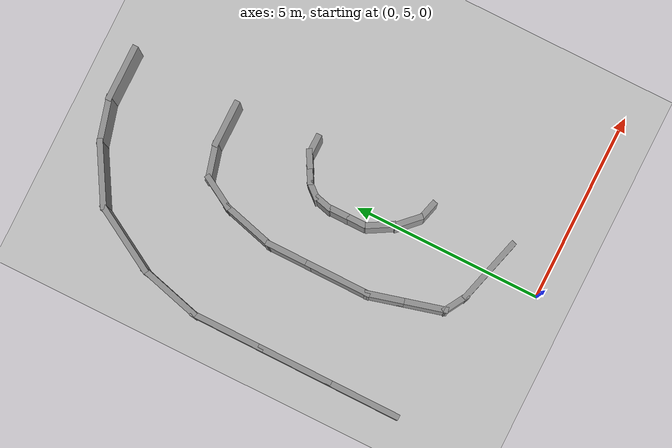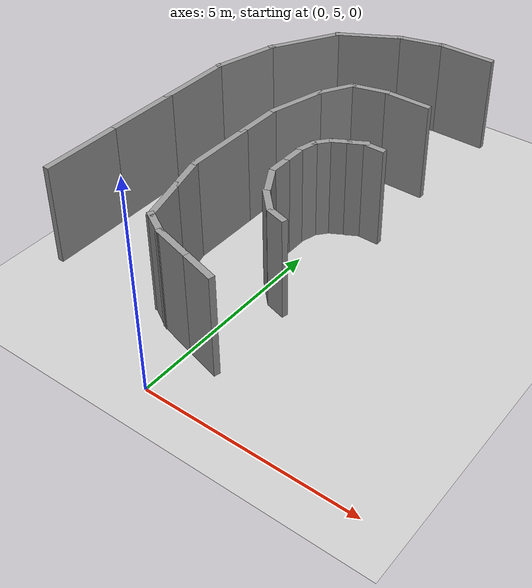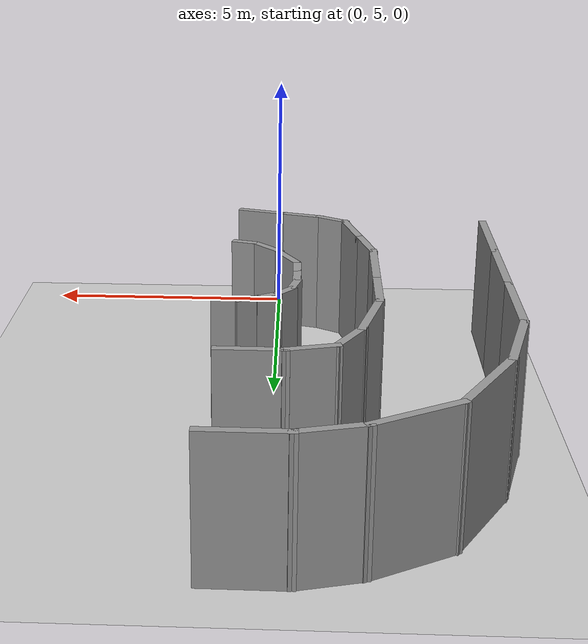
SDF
<sdf version="1.6">
 <world name="default">
  <model name="ground_plane">
   <static>1</static>
   <link name="link">
    <collision name="collision">
     <geometry><plane><normal>0 0 1</normal><size>100 100</size></plane></geometry>
     <surface><friction><ode><mu>100</mu><mu2>50</mu2></ode></friction></surface>
    </collision>
    <visual name="visual">
     <cast_shadows>0</cast_shadows>
     <geometry><plane><normal>0 0 1</normal><size>100 100</size></plane></geometry>
     <material>
      <script><uri>file://media/materials/scripts/gazebo.material</uri><name>Gazebo/Grey</name></script>
     </material>
    </visual>
   </link>
  </model>
  <model name="c-Snail_update">
   <link name="Wall_29">
    <pose>10.2991 1.24294 0 0 -0 1.5708</pose>
    <visual name="Wall_29_Visual">
     <pose>0 0 1.25 0 -0 0</pose>
     <geometry><box><size>1.5 0.15 2.5</size></box></geometry>
     <material>
      <script><uri>file://media/materials/scripts/gazebo.material</uri><name>Gazebo/Grey</name></script>
      <ambient>1 1 1 1</ambient>
     </material>
     <meta><layer>0</layer></meta>
    </visual>
    <collision name="Wall_29_Collision">
     <pose>0 0 1.25 0 -0 0</pose>
     <geometry><box><size>1.5 0.15 2.5</size></box></geometry>
     <surface>
      <friction>
       <ode><mu>1</mu><mu2>1</mu2><fdir1>0 0 0</fdir1><slip1>0</slip1><slip2>0</slip2></ode>
       <torsional>
        <coefficient>1</coefficient>
        <patch_radius>0</patch_radius>
        <surface_radius>0</surface_radius>
        <use_patch_radius>1</use_patch_radius>
        <ode><slip>0</slip></ode>
       </torsional>
      </friction>
      <bounce><restitution_coefficient>0</restitution_coefficient><threshold>1e+06</threshold></bounce>
      <contact>
       <collide_without_contact>0</collide_without_contact>
       <collide_without_contact_bitmask>1</collide_without_contact_bitmask>
       <collide_bitmask>1</collide_bitmask>
       <ode>
        <soft_cfm>0</soft_cfm>
        <soft_erp>0.2</soft_erp>
        <kp>1e+13</kp>
        <kd>1</kd>
        <max_vel>0.01</max_vel>
        <min_depth>0</min_depth>
       </ode>
       <bullet>
        <split_impulse>1</split_impulse>
        <split_impulse_penetration_threshold>-0.01</split_impulse_penetration_threshold>
        <soft_cfm>0</soft_cfm>
        <soft_erp>0.2</soft_erp>
        <kp>1e+13</kp>
        <kd>1</kd>
       </bullet>
      </contact>
     </surface>
    </collision>
   </link>
   <link name="Wall_30">
    <pose>10.1568 2.4492 0 0 -0 1.8326</pose>
    <visual name="Wall_30_Visual">
     <pose>0 0 1.25 0 -0 0</pose>
     <geometry><box><size>1.25 0.15 2.5</size></box></geometry>
     <material>
      <script><uri>file://media/materials/scripts/gazebo.material</uri><name>Gazebo/Grey</name></script>
      <ambient>1 1 1 1</ambient>
     </material>
     <meta><layer>0</layer></meta>
    </visual>
    <collision name="Wall_30_Collision">
     <pose>0 0 1.25 0 -0 0</pose>
     <geometry><box><size>1.25 0.15 2.5</size></box></geometry>
     <surface>
      <friction>
       <ode><mu>1</mu><mu2>1</mu2><fdir1>0 0 0</fdir1><slip1>0</slip1><slip2>0</slip2></ode>
       <torsional>
        <coefficient>1</coefficient>
        <patch_radius>0</patch_radius>
        <surface_radius>0</surface_radius>
        <use_patch_radius>1</use_patch_radius>
        <ode><slip>0</slip></ode>
       </torsional>
      </friction>
      <bounce><restitution_coefficient>0</restitution_coefficient><threshold>1e+06</threshold></bounce>
      <contact>
       <collide_without_contact>0</collide_without_contact>
       <collide_without_contact_bitmask>1</collide_without_contact_bitmask>
       <collide_bitmask>1</collide_bitmask>
       <ode>
        <soft_cfm>0</soft_cfm>
        <soft_erp>0.2</soft_erp>
        <kp>1e+13</kp>
        <kd>1</kd>
        <max_vel>0.01</max_vel>
        <min_depth>0</min_depth>
       </ode>
       <bullet>
        <split_impulse>1</split_impulse>
        <split_impulse_penetration_threshold>-0.01</split_impulse_penetration_threshold>
        <soft_cfm>0</soft_cfm>
        <soft_erp>0.2</soft_erp>
        <kp>1e+13</kp>
        <kd>1</kd>
       </bullet>
      </contact>
     </surface>
    </collision>
   </link>
   <link name="Wall_31">
    <pose>9.61441 3.67328 0 0 -0 2.0944</pose>
    <visual name="Wall_31_Visual">
     <pose>0 0 1.25 0 -0 0</pose>
     <geometry><box><size>1.75 0.15 2.5</size></box></geometry>
     <material>
      <script><uri>file://media/materials/scripts/gazebo.material</uri><name>Gazebo/Grey</name></script>
      <ambient>1 1 1 1</ambient>
     </material>
     <meta><layer>0</layer></meta>
    </visual>
    <collision name="Wall_31_Collision">
     <pose>0 0 1.25 0 -0 0</pose>
     <geometry><box><size>1.75 0.15 2.5</size></box></geometry>
     <surface>
      <friction>
       <ode><mu>1</mu><mu2>1</mu2><fdir1>0 0 0</fdir1><slip1>0</slip1><slip2>0</slip2></ode>
       <torsional>
        <coefficient>1</coefficient>
        <patch_radius>0</patch_radius>
        <surface_radius>0</surface_radius>
        <use_patch_radius>1</use_patch_radius>
        <ode><slip>0</slip></ode>
       </torsional>
      </friction>
      <bounce><restitution_coefficient>0</restitution_coefficient><threshold>1e+06</threshold></bounce>
      <contact>
       <collide_without_contact>0</collide_without_contact>
       <collide_without_contact_bitmask>1</collide_without_contact_bitmask>
       <collide_bitmask>1</collide_bitmask>
       <ode>
        <soft_cfm>0</soft_cfm>
        <soft_erp>0.2</soft_erp>
        <kp>1e+13</kp>
        <kd>1</kd>
        <max_vel>0.01</max_vel>
        <min_depth>0</min_depth>
       </ode>
       <bullet>
        <split_impulse>1</split_impulse>
        <split_impulse_penetration_threshold>-0.01</split_impulse_penetration_threshold>
        <soft_cfm>0</soft_cfm>
        <soft_erp>0.2</soft_erp>
        <kp>1e+13</kp>
        <kd>1</kd>
       </bullet>
      </contact>
     </surface>
    </collision>
   </link>
   <link name="Wall_32">
    <pose>8.41334 4.8286 0 0 -0 2.61799</pose>
    <visual name="Wall_32_Visual">
     <pose>0 0 1.25 0 -0 0</pose>
     <geometry><box><size>2 0.15 2.5</size></box></geometry>
     <material>
      <script><uri>file://media/materials/scripts/gazebo.material</uri><name>Gazebo/Grey</name></script>
      <ambient>1 1 1 1</ambient>
     </material>
     <meta><layer>0</layer></meta>
    </visual>
    <collision name="Wall_32_Collision">
     <pose>0 0 1.25 0 -0 0</pose>
     <geometry><box><size>2 0.15 2.5</size></box></geometry>
     <surface>
      <friction>
       <ode><mu>1</mu><mu2>1</mu2><fdir1>0 0 0</fdir1><slip1>0</slip1><slip2>0</slip2></ode>
       <torsional>
        <coefficient>1</coefficient>
        <patch_radius>0</patch_radius>
        <surface_radius>0</surface_radius>
        <use_patch_radius>1</use_patch_radius>
        <ode><slip>0</slip></ode>
       </torsional>
      </friction>
      <bounce><restitution_coefficient>0</restitution_coefficient><threshold>1e+06</threshold></bounce>
      <contact>
       <collide_without_contact>0</collide_without_contact>
       <collide_without_contact_bitmask>1</collide_without_contact_bitmask>
       <collide_bitmask>1</collide_bitmask>
       <ode>
        <soft_cfm>0</soft_cfm>
        <soft_erp>0.2</soft_erp>
        <kp>1e+13</kp>
        <kd>1</kd>
        <max_vel>0.01</max_vel>
        <min_depth>0</min_depth>
       </ode>
       <bullet>
        <split_impulse>1</split_impulse>
        <split_impulse_penetration_threshold>-0.01</split_impulse_penetration_threshold>
        <soft_cfm>0</soft_cfm>
        <soft_erp>0.2</soft_erp>
        <kp>1e+13</kp>
        <kd>1</kd>
       </bullet>
      </contact>
     </surface>
    </collision>
   </link>
   <link name="Wall_33">
    <pose>6.83952 5.49815 0 0 -0 2.87979</pose>
    <visual name="Wall_33_Visual">
     <pose>0 0 1.25 0 -0 0</pose>
     <geometry><box><size>1.75 0.15 2.5</size></box></geometry>
     <material>
      <script><uri>file://media/materials/scripts/gazebo.material</uri><name>Gazebo/Grey</name></script>
      <ambient>1 1 1 1</ambient>
     </material>
     <meta><layer>0</layer></meta>
    </visual>
    <collision name="Wall_33_Collision">
     <pose>0 0 1.25 0 -0 0</pose>
     <geometry><box><size>1.75 0.15 2.5</size></box></geometry>
     <surface>
      <friction>
       <ode><mu>1</mu><mu2>1</mu2><fdir1>0 0 0</fdir1><slip1>0</slip1><slip2>0</slip2></ode>
       <torsional>
        <coefficient>1</coefficient>
        <patch_radius>0</patch_radius>
        <surface_radius>0</surface_radius>
        <use_patch_radius>1</use_patch_radius>
        <ode><slip>0</slip></ode>
       </torsional>
      </friction>
      <bounce><restitution_coefficient>0</restitution_coefficient><threshold>1e+06</threshold></bounce>
      <contact>
       <collide_without_contact>0</collide_without_contact>
       <collide_without_contact_bitmask>1</collide_without_contact_bitmask>
       <collide_bitmask>1</collide_bitmask>
       <ode>
        <soft_cfm>0</soft_cfm>
        <soft_erp>0.2</soft_erp>
        <kp>1e+13</kp>
        <kd>1</kd>
        <max_vel>0.01</max_vel>
        <min_depth>0</min_depth>
       </ode>
       <bullet>
        <split_impulse>1</split_impulse>
        <split_impulse_penetration_threshold>-0.01</split_impulse_penetration_threshold>
        <soft_cfm>0</soft_cfm>
        <soft_erp>0.2</soft_erp>
        <kp>1e+13</kp>
        <kd>1</kd>
       </bullet>
      </contact>
     </surface>
    </collision>
   </link>
   <link name="Wall_34">
    <pose>5.14178 5.70521 0 0 -0 3.14159</pose>
    <visual name="Wall_34_Visual">
     <pose>0 0 1.25 0 -0 0</pose>
     <geometry><box><size>2 0.15 2.5</size></box></geometry>
     <material>
      <script><uri>file://media/materials/scripts/gazebo.material</uri><name>Gazebo/Grey</name></script>
      <ambient>1 1 1 1</ambient>
     </material>
     <meta><layer>0</layer></meta>
    </visual>
    <collision name="Wall_34_Collision">
     <pose>0 0 1.25 0 -0 0</pose>
     <geometry><box><size>2 0.15 2.5</size></box></geometry>
     <surface>
      <friction>
       <ode><mu>1</mu><mu2>1</mu2><fdir1>0 0 0</fdir1><slip1>0</slip1><slip2>0</slip2></ode>
       <torsional>
        <coefficient>1</coefficient>
        <patch_radius>0</patch_radius>
        <surface_radius>0</surface_radius>
        <use_patch_radius>1</use_patch_radius>
        <ode><slip>0</slip></ode>
       </torsional>
      </friction>
      <bounce><restitution_coefficient>0</restitution_coefficient><threshold>1e+06</threshold></bounce>
      <contact>
       <collide_without_contact>0</collide_without_contact>
       <collide_without_contact_bitmask>1</collide_without_contact_bitmask>
       <collide_bitmask>1</collide_bitmask>
       <ode>
        <soft_cfm>0</soft_cfm>
        <soft_erp>0.2</soft_erp>
        <kp>1e+13</kp>
        <kd>1</kd>
        <max_vel>0.01</max_vel>
        <min_depth>0</min_depth>
       </ode>
       <bullet>
        <split_impulse>1</split_impulse>
        <split_impulse_penetration_threshold>-0.01</split_impulse_penetration_threshold>
        <soft_cfm>0</soft_cfm>
        <soft_erp>0.2</soft_erp>
        <kp>1e+13</kp>
        <kd>1</kd>
       </bullet>
      </contact>
     </surface>
    </collision>
   </link>
   <link name="Wall_35">
    <pose>3.29178 5.70521 0 0 -0 3.14159</pose>
    <visual name="Wall_35_Visual">
     <pose>0 0 1.25 0 -0 0</pose>
     <geometry><box><size>2 0.15 2.5</size></box></geometry>
     <material>
      <script><uri>file://media/materials/scripts/gazebo.material</uri><name>Gazebo/Grey</name></script>
      <ambient>1 1 1 1</ambient>
     </material>
     <meta><layer>0</layer></meta>
    </visual>
    <collision name="Wall_35_Collision">
     <pose>0 0 1.25 0 -0 0</pose>
     <geometry><box><size>2 0.15 2.5</size></box></geometry>
     <surface>
      <friction>
       <ode><mu>1</mu><mu2>1</mu2><fdir1>0 0 0</fdir1><slip1>0</slip1><slip2>0</slip2></ode>
       <torsional>
        <coefficient>1</coefficient>
        <patch_radius>0</patch_radius>
        <surface_radius>0</surface_radius>
        <use_patch_radius>1</use_patch_radius>
        <ode><slip>0</slip></ode>
       </torsional>
      </friction>
      <bounce><restitution_coefficient>0</restitution_coefficient><threshold>1e+06</threshold></bounce>
      <contact>
       <collide_without_contact>0</collide_without_contact>
       <collide_without_contact_bitmask>1</collide_without_contact_bitmask>
       <collide_bitmask>1</collide_bitmask>
       <ode>
        <soft_cfm>0</soft_cfm>
        <soft_erp>0.2</soft_erp>
        <kp>1e+13</kp>
        <kd>1</kd>
        <max_vel>0.01</max_vel>
        <min_depth>0</min_depth>
       </ode>
       <bullet>
        <split_impulse>1</split_impulse>
        <split_impulse_penetration_threshold>-0.01</split_impulse_penetration_threshold>
        <soft_cfm>0</soft_cfm>
        <soft_erp>0.2</soft_erp>
        <kp>1e+13</kp>
        <kd>1</kd>
       </bullet>
      </contact>
     </surface>
    </collision>
   </link>
   <link name="Wall_36">
    <pose>1.44178 5.70521 0 0 -0 3.14159</pose>
    <visual name="Wall_36_Visual">
     <pose>0 0 1.25 0 -0 0</pose>
     <geometry><box><size>2 0.15 2.5</size></box></geometry>
     <material>
      <script><uri>file://media/materials/scripts/gazebo.material</uri><name>Gazebo/Grey</name></script>
      <ambient>1 1 1 1</ambient>
     </material>
     <meta><layer>0</layer></meta>
    </visual>
    <collision name="Wall_36_Collision">
     <pose>0 0 1.25 0 -0 0</pose>
     <geometry><box><size>2 0.15 2.5</size></box></geometry>
     <surface>
      <friction>
       <ode><mu>1</mu><mu2>1</mu2><fdir1>0 0 0</fdir1><slip1>0</slip1><slip2>0</slip2></ode>
       <torsional>
        <coefficient>1</coefficient>
        <patch_radius>0</patch_radius>
        <surface_radius>0</surface_radius>
        <use_patch_radius>1</use_patch_radius>
        <ode><slip>0</slip></ode>
       </torsional>
      </friction>
      <bounce><restitution_coefficient>0</restitution_coefficient><threshold>1e+06</threshold></bounce>
      <contact>
       <collide_without_contact>0</collide_without_contact>
       <collide_without_contact_bitmask>1</collide_without_contact_bitmask>
       <collide_bitmask>1</collide_bitmask>
       <ode>
        <soft_cfm>0</soft_cfm>
        <soft_erp>0.2</soft_erp>
        <kp>1e+13</kp>
        <kd>1</kd>
        <max_vel>0.01</max_vel>
        <min_depth>0</min_depth>
       </ode>
       <bullet>
        <split_impulse>1</split_impulse>
        <split_impulse_penetration_threshold>-0.01</split_impulse_penetration_threshold>
        <soft_cfm>0</soft_cfm>
        <soft_erp>0.2</soft_erp>
        <kp>1e+13</kp>
        <kd>1</kd>
       </bullet>
      </contact>
     </surface>
    </collision>
   </link>
   <link name="Wall_56">
    <pose>7.46018 1.20021 0 0 -0 1.5708</pose>
    <visual name="Wall_56_Visual">
     <pose>0 0 1.25 0 -0 0</pose>
     <geometry><box><size>1.25 0.15 2.5</size></box></geometry>
     <material>
      <script><uri>file://media/materials/scripts/gazebo.material</uri><name>Gazebo/Grey</name></script>
      <ambient>1 1 1 1</ambient>
     </material>
     <meta><layer>0</layer></meta>
    </visual>
    <collision name="Wall_56_Collision">
     <pose>0 0 1.25 0 -0 0</pose>
     <geometry><box><size>1.25 0.15 2.5</size></box></geometry>
     <surface>
      <friction>
       <ode><mu>1</mu><mu2>1</mu2><fdir1>0 0 0</fdir1><slip1>0</slip1><slip2>0</slip2></ode>
       <torsional>
        <coefficient>1</coefficient>
        <patch_radius>0</patch_radius>
        <surface_radius>0</surface_radius>
        <use_patch_radius>1</use_patch_radius>
        <ode><slip>0</slip></ode>
       </torsional>
      </friction>
      <bounce><restitution_coefficient>0</restitution_coefficient><threshold>1e+06</threshold></bounce>
      <contact>
       <collide_without_contact>0</collide_without_contact>
       <collide_without_contact_bitmask>1</collide_without_contact_bitmask>
       <collide_bitmask>1</collide_bitmask>
       <ode>
        <soft_cfm>0</soft_cfm>
        <soft_erp>0.2</soft_erp>
        <kp>1e+13</kp>
        <kd>1</kd>
        <max_vel>0.01</max_vel>
        <min_depth>0</min_depth>
       </ode>
       <bullet>
        <split_impulse>1</split_impulse>
        <split_impulse_penetration_threshold>-0.01</split_impulse_penetration_threshold>
        <soft_cfm>0</soft_cfm>
        <soft_erp>0.2</soft_erp>
        <kp>1e+13</kp>
        <kd>1</kd>
       </bullet>
      </contact>
     </surface>
    </collision>
   </link>
   <link name="Wall_57">
    <pose>7.35018 2.16072 0 0 -0 1.8326</pose>
    <visual name="Wall_57_Visual">
     <pose>0 0 1.25 0 -0 0</pose>
     <geometry><box><size>1 0.15 2.5</size></box></geometry>
     <material>
      <script><uri>file://media/materials/scripts/gazebo.material</uri><name>Gazebo/Grey</name></script>
      <ambient>1 1 1 1</ambient>
     </material>
     <meta><layer>0</layer></meta>
    </visual>
    <collision name="Wall_57_Collision">
     <pose>0 0 1.25 0 -0 0</pose>
     <geometry><box><size>1 0.15 2.5</size></box></geometry>
     <surface>
      <friction>
       <ode><mu>1</mu><mu2>1</mu2><fdir1>0 0 0</fdir1><slip1>0</slip1><slip2>0</slip2></ode>
       <torsional>
        <coefficient>1</coefficient>
        <patch_radius>0</patch_radius>
        <surface_radius>0</surface_radius>
        <use_patch_radius>1</use_patch_radius>
        <ode><slip>0</slip></ode>
       </torsional>
      </friction>
      <bounce><restitution_coefficient>0</restitution_coefficient><threshold>1e+06</threshold></bounce>
      <contact>
       <collide_without_contact>0</collide_without_contact>
       <collide_without_contact_bitmask>1</collide_without_contact_bitmask>
       <collide_bitmask>1</collide_bitmask>
       <ode>
        <soft_cfm>0</soft_cfm>
        <soft_erp>0.2</soft_erp>
        <kp>1e+13</kp>
        <kd>1</kd>
        <max_vel>0.01</max_vel>
        <min_depth>0</min_depth>
       </ode>
       <bullet>
        <split_impulse>1</split_impulse>
        <split_impulse_penetration_threshold>-0.01</split_impulse_penetration_threshold>
        <soft_cfm>0</soft_cfm>
        <soft_erp>0.2</soft_erp>
        <kp>1e+13</kp>
        <kd>1</kd>
       </bullet>
      </contact>
     </surface>
    </collision>
   </link>
   <link name="Wall_58">
    <pose>6.87212 2.78374 0 0 -0 2.61799</pose>
    <visual name="Wall_58_Visual">
     <pose>0 0 1.25 0 -0 0</pose>
     <geometry><box><size>1 0.15 2.5</size></box></geometry>
     <material>
      <script><uri>file://media/materials/scripts/gazebo.material</uri><name>Gazebo/Grey</name></script>
      <ambient>1 1 1 1</ambient>
     </material>
     <meta><layer>0</layer></meta>
    </visual>
    <collision name="Wall_58_Collision">
     <pose>0 0 1.25 0 -0 0</pose>
     <geometry><box><size>1 0.15 2.5</size></box></geometry>
     <surface>
      <friction>
       <ode><mu>1</mu><mu2>1</mu2><fdir1>0 0 0</fdir1><slip1>0</slip1><slip2>0</slip2></ode>
       <torsional>
        <coefficient>1</coefficient>
        <patch_radius>0</patch_radius>
        <surface_radius>0</surface_radius>
        <use_patch_radius>1</use_patch_radius>
        <ode><slip>0</slip></ode>
       </torsional>
      </friction>
      <bounce><restitution_coefficient>0</restitution_coefficient><threshold>1e+06</threshold></bounce>
      <contact>
       <collide_without_contact>0</collide_without_contact>
       <collide_without_contact_bitmask>1</collide_without_contact_bitmask>
       <collide_bitmask>1</collide_bitmask>
       <ode>
        <soft_cfm>0</soft_cfm>
        <soft_erp>0.2</soft_erp>
        <kp>1e+13</kp>
        <kd>1</kd>
        <max_vel>0.01</max_vel>
        <min_depth>0</min_depth>
       </ode>
       <bullet>
        <split_impulse>1</split_impulse>
        <split_impulse_penetration_threshold>-0.01</split_impulse_penetration_threshold>
        <soft_cfm>0</soft_cfm>
        <soft_erp>0.2</soft_erp>
        <kp>1e+13</kp>
        <kd>1</kd>
       </bullet>
      </contact>
     </surface>
    </collision>
   </link>
   <link name="Wall_59">
    <pose>5.85206 3.17095 0 0 -0 2.87979</pose>
    <visual name="Wall_59_Visual">
     <pose>0 0 1.25 0 -0 0</pose>
     <geometry><box><size>1.5 0.15 2.5</size></box></geometry>
     <material>
      <script><uri>file://media/materials/scripts/gazebo.material</uri><name>Gazebo/Grey</name></script>
      <ambient>1 1 1 1</ambient>
     </material>
     <meta><layer>0</layer></meta>
    </visual>
    <collision name="Wall_59_Collision">
     <pose>0 0 1.25 0 -0 0</pose>
     <geometry><box><size>1.5 0.15 2.5</size></box></geometry>
     <surface>
      <friction>
       <ode><mu>1</mu><mu2>1</mu2><fdir1>0 0 0</fdir1><slip1>0</slip1><slip2>0</slip2></ode>
       <torsional>
        <coefficient>1</coefficient>
        <patch_radius>0</patch_radius>
        <surface_radius>0</surface_radius>
        <use_patch_radius>1</use_patch_radius>
        <ode><slip>0</slip></ode>
       </torsional>
      </friction>
      <bounce><restitution_coefficient>0</restitution_coefficient><threshold>1e+06</threshold></bounce>
      <contact>
       <collide_without_contact>0</collide_without_contact>
       <collide_without_contact_bitmask>1</collide_without_contact_bitmask>
       <collide_bitmask>1</collide_bitmask>
       <ode>
        <soft_cfm>0</soft_cfm>
        <soft_erp>0.2</soft_erp>
        <kp>1e+13</kp>
        <kd>1</kd>
        <max_vel>0.01</max_vel>
        <min_depth>0</min_depth>
       </ode>
       <bullet>
        <split_impulse>1</split_impulse>
        <split_impulse_penetration_threshold>-0.01</split_impulse_penetration_threshold>
        <soft_cfm>0</soft_cfm>
        <soft_erp>0.2</soft_erp>
        <kp>1e+13</kp>
        <kd>1</kd>
       </bullet>
      </contact>
     </surface>
    </collision>
   </link>
   <link name="Wall_60">
    <pose>4.65006 3.34565 0 0 -0 3.14159</pose>
    <visual name="Wall_60_Visual">
     <pose>0 0 1.25 0 -0 0</pose>
     <geometry><box><size>1.25 0.15 2.5</size></box></geometry>
     <material>
      <script><uri>file://media/materials/scripts/gazebo.material</uri><name>Gazebo/Grey</name></script>
      <ambient>1 1 1 1</ambient>
     </material>
     <meta><layer>0</layer></meta>
    </visual>
    <collision name="Wall_60_Collision">
     <pose>0 0 1.25 0 -0 0</pose>
     <geometry><box><size>1.25 0.15 2.5</size></box></geometry>
     <surface>
      <friction>
       <ode><mu>1</mu><mu2>1</mu2><fdir1>0 0 0</fdir1><slip1>0</slip1><slip2>0</slip2></ode>
       <torsional>
        <coefficient>1</coefficient>
        <patch_radius>0</patch_radius>
        <surface_radius>0</surface_radius>
        <use_patch_radius>1</use_patch_radius>
        <ode><slip>0</slip></ode>
       </torsional>
      </friction>
      <bounce><restitution_coefficient>0</restitution_coefficient><threshold>1e+06</threshold></bounce>
      <contact>
       <collide_without_contact>0</collide_without_contact>
       <collide_without_contact_bitmask>1</collide_without_contact_bitmask>
       <collide_bitmask>1</collide_bitmask>
       <ode>
        <soft_cfm>0</soft_cfm>
        <soft_erp>0.2</soft_erp>
        <kp>1e+13</kp>
        <kd>1</kd>
        <max_vel>0.01</max_vel>
        <min_depth>0</min_depth>
       </ode>
       <bullet>
        <split_impulse>1</split_impulse>
        <split_impulse_penetration_threshold>-0.01</split_impulse_penetration_threshold>
        <soft_cfm>0</soft_cfm>
        <soft_erp>0.2</soft_erp>
        <kp>1e+13</kp>
        <kd>1</kd>
       </bullet>
      </contact>
     </surface>
    </collision>
   </link>
   <link name="Wall_61">
    <pose>3.30006 3.34565 0 0 -0 3.14159</pose>
    <visual name="Wall_61_Visual">
     <pose>0 0 1.25 0 -0 0</pose>
     <geometry><box><size>1.75 0.15 2.5</size></box></geometry>
     <material>
      <script><uri>file://media/materials/scripts/gazebo.material</uri><name>Gazebo/Grey</name></script>
      <ambient>1 1 1 1</ambient>
     </material>
     <meta><layer>0</layer></meta>
    </visual>
    <collision name="Wall_61_Collision">
     <pose>0 0 1.25 0 -0 0</pose>
     <geometry><box><size>1.75 0.15 2.5</size></box></geometry>
     <surface>
      <friction>
       <ode><mu>1</mu><mu2>1</mu2><fdir1>0 0 0</fdir1><slip1>0</slip1><slip2>0</slip2></ode>
       <torsional>
        <coefficient>1</coefficient>
        <patch_radius>0</patch_radius>
        <surface_radius>0</surface_radius>
        <use_patch_radius>1</use_patch_radius>
        <ode><slip>0</slip></ode>
       </torsional>
      </friction>
      <bounce><restitution_coefficient>0</restitution_coefficient><threshold>1e+06</threshold></bounce>
      <contact>
       <collide_without_contact>0</collide_without_contact>
       <collide_without_contact_bitmask>1</collide_without_contact_bitmask>
       <collide_bitmask>1</collide_bitmask>
       <ode>
        <soft_cfm>0</soft_cfm>
        <soft_erp>0.2</soft_erp>
        <kp>1e+13</kp>
        <kd>1</kd>
        <max_vel>0.01</max_vel>
        <min_depth>0</min_depth>
       </ode>
       <bullet>
        <split_impulse>1</split_impulse>
        <split_impulse_penetration_threshold>-0.01</split_impulse_penetration_threshold>
        <soft_cfm>0</soft_cfm>
        <soft_erp>0.2</soft_erp>
        <kp>1e+13</kp>
        <kd>1</kd>
       </bullet>
      </contact>
     </surface>
    </collision>
   </link>
   <link name="Wall_62">
    <pose>2.08954 3.23565 0 0 0 -2.87979</pose>
    <visual name="Wall_62_Visual">
     <pose>0 0 1.25 0 -0 0</pose>
     <geometry><box><size>1 0.15 2.5</size></box></geometry>
     <material>
      <script><uri>file://media/materials/scripts/gazebo.material</uri><name>Gazebo/Grey</name></script>
      <ambient>1 1 1 1</ambient>
     </material>
     <meta><layer>0</layer></meta>
    </visual>
    <collision name="Wall_62_Collision">
     <pose>0 0 1.25 0 -0 0</pose>
     <geometry><box><size>1 0.15 2.5</size></box></geometry>
     <surface>
      <friction>
       <ode><mu>1</mu><mu2>1</mu2><fdir1>0 0 0</fdir1><slip1>0</slip1><slip2>0</slip2></ode>
       <torsional>
        <coefficient>1</coefficient>
        <patch_radius>0</patch_radius>
        <surface_radius>0</surface_radius>
        <use_patch_radius>1</use_patch_radius>
        <ode><slip>0</slip></ode>
       </torsional>
      </friction>
      <bounce><restitution_coefficient>0</restitution_coefficient><threshold>1e+06</threshold></bounce>
      <contact>
       <collide_without_contact>0</collide_without_contact>
       <collide_without_contact_bitmask>1</collide_without_contact_bitmask>
       <collide_bitmask>1</collide_bitmask>
       <ode>
        <soft_cfm>0</soft_cfm>
        <soft_erp>0.2</soft_erp>
        <kp>1e+13</kp>
        <kd>1</kd>
        <max_vel>0.01</max_vel>
        <min_depth>0</min_depth>
       </ode>
       <bullet>
        <split_impulse>1</split_impulse>
        <split_impulse_penetration_threshold>-0.01</split_impulse_penetration_threshold>
        <soft_cfm>0</soft_cfm>
        <soft_erp>0.2</soft_erp>
        <kp>1e+13</kp>
        <kd>1</kd>
       </bullet>
      </contact>
     </surface>
    </collision>
   </link>
   <link name="Wall_63">
    <pose>1.14777 2.9833 0 0 0 -2.87979</pose>
    <visual name="Wall_63_Visual">
     <pose>0 0 1.25 0 -0 0</pose>
     <geometry><box><size>1.25 0.15 2.5</size></box></geometry>
     <material>
      <script><uri>file://media/materials/scripts/gazebo.material</uri><name>Gazebo/Grey</name></script>
      <ambient>1 1 1 1</ambient>
     </material>
     <meta><layer>0</layer></meta>
    </visual>
    <collision name="Wall_63_Collision">
     <pose>0 0 1.25 0 -0 0</pose>
     <geometry><box><size>1.25 0.15 2.5</size></box></geometry>
     <surface>
      <friction>
       <ode><mu>1</mu><mu2>1</mu2><fdir1>0 0 0</fdir1><slip1>0</slip1><slip2>0</slip2></ode>
       <torsional>
        <coefficient>1</coefficient>
        <patch_radius>0</patch_radius>
        <surface_radius>0</surface_radius>
        <use_patch_radius>1</use_patch_radius>
        <ode><slip>0</slip></ode>
       </torsional>
      </friction>
      <bounce><restitution_coefficient>0</restitution_coefficient><threshold>1e+06</threshold></bounce>
      <contact>
       <collide_without_contact>0</collide_without_contact>
       <collide_without_contact_bitmask>1</collide_without_contact_bitmask>
       <collide_bitmask>1</collide_bitmask>
       <ode>
        <soft_cfm>0</soft_cfm>
        <soft_erp>0.2</soft_erp>
        <kp>1e+13</kp>
        <kd>1</kd>
        <max_vel>0.01</max_vel>
        <min_depth>0</min_depth>
       </ode>
       <bullet>
        <split_impulse>1</split_impulse>
        <split_impulse_penetration_threshold>-0.01</split_impulse_penetration_threshold>
        <soft_cfm>0</soft_cfm>
        <soft_erp>0.2</soft_erp>
        <kp>1e+13</kp>
        <kd>1</kd>
       </bullet>
      </contact>
     </surface>
    </collision>
   </link>
   <link name="Wall_64">
    <pose>0.466507 2.58114 0 0 0 -2.0944</pose>
    <visual name="Wall_64_Visual">
     <pose>0 0 1.25 0 -0 0</pose>
     <geometry><box><size>0.75 0.15 2.5</size></box></geometry>
     <material>
      <script><uri>file://media/materials/scripts/gazebo.material</uri><name>Gazebo/Grey</name></script>
      <ambient>1 1 1 1</ambient>
     </material>
     <meta><layer>0</layer></meta>
    </visual>
    <collision name="Wall_64_Collision">
     <pose>0 0 1.25 0 -0 0</pose>
     <geometry><box><size>0.75 0.15 2.5</size></box></geometry>
     <surface>
      <friction>
       <ode><mu>1</mu><mu2>1</mu2><fdir1>0 0 0</fdir1><slip1>0</slip1><slip2>0</slip2></ode>
       <torsional>
        <coefficient>1</coefficient>
        <patch_radius>0</patch_radius>
        <surface_radius>0</surface_radius>
        <use_patch_radius>1</use_patch_radius>
        <ode><slip>0</slip></ode>
       </torsional>
      </friction>
      <bounce><restitution_coefficient>0</restitution_coefficient><threshold>1e+06</threshold></bounce>
      <contact>
       <collide_without_contact>0</collide_without_contact>
       <collide_without_contact_bitmask>1</collide_without_contact_bitmask>
       <collide_bitmask>1</collide_bitmask>
       <ode>
        <soft_cfm>0</soft_cfm>
        <soft_erp>0.2</soft_erp>
        <kp>1e+13</kp>
        <kd>1</kd>
        <max_vel>0.01</max_vel>
        <min_depth>0</min_depth>
       </ode>
       <bullet>
        <split_impulse>1</split_impulse>
        <split_impulse_penetration_threshold>-0.01</split_impulse_penetration_threshold>
        <soft_cfm>0</soft_cfm>
        <soft_erp>0.2</soft_erp>
        <kp>1e+13</kp>
        <kd>1</kd>
       </bullet>
      </contact>
     </surface>
    </collision>
   </link>
   <link name="Wall_65">
    <pose>0.206509 1.91082 0 0 0 -1.8326</pose>
    <visual name="Wall_65_Visual">
     <pose>0 0 1.25 0 -0 0</pose>
     <geometry><box><size>1 0.15 2.5</size></box></geometry>
     <material>
      <script><uri>file://media/materials/scripts/gazebo.material</uri><name>Gazebo/Grey</name></script>
      <ambient>1 1 1 1</ambient>
     </material>
     <meta><layer>0</layer></meta>
    </visual>
    <collision name="Wall_65_Collision">
     <pose>0 0 1.25 0 -0 0</pose>
     <geometry><box><size>1 0.15 2.5</size></box></geometry>
     <surface>
      <friction>
       <ode><mu>1</mu><mu2>1</mu2><fdir1>0 0 0</fdir1><slip1>0</slip1><slip2>0</slip2></ode>
       <torsional>
        <coefficient>1</coefficient>
        <patch_radius>0</patch_radius>
        <surface_radius>0</surface_radius>
        <use_patch_radius>1</use_patch_radius>
        <ode><slip>0</slip></ode>
       </torsional>
      </friction>
      <bounce><restitution_coefficient>0</restitution_coefficient><threshold>1e+06</threshold></bounce>
      <contact>
       <collide_without_contact>0</collide_without_contact>
       <collide_without_contact_bitmask>1</collide_without_contact_bitmask>
       <collide_bitmask>1</collide_bitmask>
       <ode>
        <soft_cfm>0</soft_cfm>
        <soft_erp>0.2</soft_erp>
        <kp>1e+13</kp>
        <kd>1</kd>
        <max_vel>0.01</max_vel>
        <min_depth>0</min_depth>
       </ode>
       <bullet>
        <split_impulse>1</split_impulse>
        <split_impulse_penetration_threshold>-0.01</split_impulse_penetration_threshold>
        <soft_cfm>0</soft_cfm>
        <soft_erp>0.2</soft_erp>
        <kp>1e+13</kp>
        <kd>1</kd>
       </bullet>
      </contact>
     </surface>
    </collision>
   </link>
   <link name="Wall_66">
    <pose>-0.013487 1.08978 0 0 0 -1.8326</pose>
    <visual name="Wall_66_Visual">
     <pose>0 0 1.25 0 -0 0</pose>
     <geometry><box><size>1 0.15 2.5</size></box></geometry>
     <material>
      <script><uri>file://media/materials/scripts/gazebo.material</uri><name>Gazebo/Grey</name></script>
      <ambient>1 1 1 1</ambient>
     </material>
     <meta><layer>0</layer></meta>
    </visual>
    <collision name="Wall_66_Collision">
     <pose>0 0 1.25 0 -0 0</pose>
     <geometry><box><size>1 0.15 2.5</size></box></geometry>
     <surface>
      <friction>
       <ode><mu>1</mu><mu2>1</mu2><fdir1>0 0 0</fdir1><slip1>0</slip1><slip2>0</slip2></ode>
       <torsional>
        <coefficient>1</coefficient>
        <patch_radius>0</patch_radius>
        <surface_radius>0</surface_radius>
        <use_patch_radius>1</use_patch_radius>
        <ode><slip>0</slip></ode>
       </torsional>
      </friction>
      <bounce><restitution_coefficient>0</restitution_coefficient><threshold>1e+06</threshold></bounce>
      <contact>
       <collide_without_contact>0</collide_without_contact>
       <collide_without_contact_bitmask>1</collide_without_contact_bitmask>
       <collide_bitmask>1</collide_bitmask>
       <ode>
        <soft_cfm>0</soft_cfm>
        <soft_erp>0.2</soft_erp>
        <kp>1e+13</kp>
        <kd>1</kd>
        <max_vel>0.01</max_vel>
        <min_depth>0</min_depth>
       </ode>
       <bullet>
        <split_impulse>1</split_impulse>
        <split_impulse_penetration_threshold>-0.01</split_impulse_penetration_threshold>
        <soft_cfm>0</soft_cfm>
        <soft_erp>0.2</soft_erp>
        <kp>1e+13</kp>
        <kd>1</kd>
       </bullet>
      </contact>
     </surface>
    </collision>
   </link>
   <link name="Wall_78">
    <pose>5.30515 0.648382 0 0 -0 1.5708</pose>
    <visual name="Wall_78_Visual">
     <pose>0 0 1.25 0 -0 0</pose>
     <geometry><box><size>0.5 0.15 2.5</size></box></geometry>
     <material>
      <script><uri>file://media/materials/scripts/gazebo.material</uri><name>Gazebo/Grey</name></script>
      <ambient>1 1 1 1</ambient>
     </material>
     <meta><layer>0</layer></meta>
    </visual>
    <collision name="Wall_78_Collision">
     <pose>0 0 1.25 0 -0 0</pose>
     <geometry><box><size>0.5 0.15 2.5</size></box></geometry>
     <surface>
      <friction>
       <ode><mu>1</mu><mu2>1</mu2><fdir1>0 0 0</fdir1><slip1>0</slip1><slip2>0</slip2></ode>
       <torsional>
        <coefficient>1</coefficient>
        <patch_radius>0</patch_radius>
        <surface_radius>0</surface_radius>
        <use_patch_radius>1</use_patch_radius>
        <ode><slip>0</slip></ode>
       </torsional>
      </friction>
      <bounce><restitution_coefficient>0</restitution_coefficient><threshold>1e+06</threshold></bounce>
      <contact>
       <collide_without_contact>0</collide_without_contact>
       <collide_without_contact_bitmask>1</collide_without_contact_bitmask>
       <collide_bitmask>1</collide_bitmask>
       <ode>
        <soft_cfm>0</soft_cfm>
        <soft_erp>0.2</soft_erp>
        <kp>1e+13</kp>
        <kd>1</kd>
        <max_vel>0.01</max_vel>
        <min_depth>0</min_depth>
       </ode>
       <bullet>
        <split_impulse>1</split_impulse>
        <split_impulse_penetration_threshold>-0.01</split_impulse_penetration_threshold>
        <soft_cfm>0</soft_cfm>
        <soft_erp>0.2</soft_erp>
        <kp>1e+13</kp>
        <kd>1</kd>
       </bullet>
      </contact>
     </surface>
    </collision>
   </link>
   <link name="Wall_79">
    <pose>5.24565 1.04184 0 0 -0 2.0944</pose>
    <visual name="Wall_79_Visual">
     <pose>0 0 1.25 0 -0 0</pose>
     <geometry><box><size>0.5 0.15 2.5</size></box></geometry>
     <material>
      <script><uri>file://media/materials/scripts/gazebo.material</uri><name>Gazebo/Grey</name></script>
      <ambient>1 1 1 1</ambient>
     </material>
     <meta><layer>0</layer></meta>
    </visual>
    <collision name="Wall_79_Collision">
     <pose>0 0 1.25 0 -0 0</pose>
     <geometry><box><size>0.5 0.15 2.5</size></box></geometry>
     <surface>
      <friction>
       <ode><mu>1</mu><mu2>1</mu2><fdir1>0 0 0</fdir1><slip1>0</slip1><slip2>0</slip2></ode>
       <torsional>
        <coefficient>1</coefficient>
        <patch_radius>0</patch_radius>
        <surface_radius>0</surface_radius>
        <use_patch_radius>1</use_patch_radius>
        <ode><slip>0</slip></ode>
       </torsional>
      </friction>
      <bounce><restitution_coefficient>0</restitution_coefficient><threshold>1e+06</threshold></bounce>
      <contact>
       <collide_without_contact>0</collide_without_contact>
       <collide_without_contact_bitmask>1</collide_without_contact_bitmask>
       <collide_bitmask>1</collide_bitmask>
       <ode>
        <soft_cfm>0</soft_cfm>
        <soft_erp>0.2</soft_erp>
        <kp>1e+13</kp>
        <kd>1</kd>
        <max_vel>0.01</max_vel>
        <min_depth>0</min_depth>
       </ode>
       <bullet>
        <split_impulse>1</split_impulse>
        <split_impulse_penetration_threshold>-0.01</split_impulse_penetration_threshold>
        <soft_cfm>0</soft_cfm>
        <soft_erp>0.2</soft_erp>
        <kp>1e+13</kp>
        <kd>1</kd>
       </bullet>
      </contact>
     </surface>
    </collision>
   </link>
   <link name="Wall_80">
    <pose>5.06173 1.38578 0 0 -0 2.0944</pose>
    <visual name="Wall_80_Visual">
     <pose>0 0 1.25 0 -0 0</pose>
     <geometry><box><size>0.5 0.15 2.5</size></box></geometry>
     <material>
      <script><uri>file://media/materials/scripts/gazebo.material</uri><name>Gazebo/Grey</name></script>
      <ambient>1 1 1 1</ambient>
     </material>
     <meta><layer>0</layer></meta>
    </visual>
    <collision name="Wall_80_Collision">
     <pose>0 0 1.25 0 -0 0</pose>
     <geometry><box><size>0.5 0.15 2.5</size></box></geometry>
     <surface>
      <friction>
       <ode><mu>1</mu><mu2>1</mu2><fdir1>0 0 0</fdir1><slip1>0</slip1><slip2>0</slip2></ode>
       <torsional>
        <coefficient>1</coefficient>
        <patch_radius>0</patch_radius>
        <surface_radius>0</surface_radius>
        <use_patch_radius>1</use_patch_radius>
        <ode><slip>0</slip></ode>
       </torsional>
      </friction>
      <bounce><restitution_coefficient>0</restitution_coefficient><threshold>1e+06</threshold></bounce>
      <contact>
       <collide_without_contact>0</collide_without_contact>
       <collide_without_contact_bitmask>1</collide_without_contact_bitmask>
       <collide_bitmask>1</collide_bitmask>
       <ode>
        <soft_cfm>0</soft_cfm>
        <soft_erp>0.2</soft_erp>
        <kp>1e+13</kp>
        <kd>1</kd>
        <max_vel>0.01</max_vel>
        <min_depth>0</min_depth>
       </ode>
       <bullet>
        <split_impulse>1</split_impulse>
        <split_impulse_penetration_threshold>-0.01</split_impulse_penetration_threshold>
        <soft_cfm>0</soft_cfm>
        <soft_erp>0.2</soft_erp>
        <kp>1e+13</kp>
        <kd>1</kd>
       </bullet>
      </contact>
     </surface>
    </collision>
   </link>
   <link name="Wall_81">
    <pose>4.80922 1.69585 0 0 -0 2.43746</pose>
    <visual name="Wall_81_Visual">
     <pose>0 0 1.25 0 -0 0</pose>
     <geometry><box><size>0.5 0.15 2.5</size></box></geometry>
     <material>
      <script><uri>file://media/materials/scripts/gazebo.material</uri><name>Gazebo/Grey</name></script>
      <ambient>1 1 1 1</ambient>
     </material>
     <meta><layer>0</layer></meta>
    </visual>
    <collision name="Wall_81_Collision">
     <pose>0 0 1.25 0 -0 0</pose>
     <geometry><box><size>0.5 0.15 2.5</size></box></geometry>
     <surface>
      <friction>
       <ode><mu>1</mu><mu2>1</mu2><fdir1>0 0 0</fdir1><slip1>0</slip1><slip2>0</slip2></ode>
       <torsional>
        <coefficient>1</coefficient>
        <patch_radius>0</patch_radius>
        <surface_radius>0</surface_radius>
        <use_patch_radius>1</use_patch_radius>
        <ode><slip>0</slip></ode>
       </torsional>
      </friction>
      <bounce><restitution_coefficient>0</restitution_coefficient><threshold>1e+06</threshold></bounce>
      <contact>
       <collide_without_contact>0</collide_without_contact>
       <collide_without_contact_bitmask>1</collide_without_contact_bitmask>
       <collide_bitmask>1</collide_bitmask>
       <ode>
        <soft_cfm>0</soft_cfm>
        <soft_erp>0.2</soft_erp>
        <kp>1e+13</kp>
        <kd>1</kd>
        <max_vel>0.01</max_vel>
        <min_depth>0</min_depth>
       </ode>
       <bullet>
        <split_impulse>1</split_impulse>
        <split_impulse_penetration_threshold>-0.01</split_impulse_penetration_threshold>
        <soft_cfm>0</soft_cfm>
        <soft_erp>0.2</soft_erp>
        <kp>1e+13</kp>
        <kd>1</kd>
       </bullet>
      </contact>
     </surface>
    </collision>
   </link>
   <link name="Wall_82">
    <pose>4.45763 1.85252 0 0 -0 2.89252</pose>
    <visual name="Wall_82_Visual">
     <pose>0 0 1.25 0 -0 0</pose>
     <geometry><box><size>0.5 0.15 2.5</size></box></geometry>
     <material>
      <script><uri>file://media/materials/scripts/gazebo.material</uri><name>Gazebo/Grey</name></script>
      <ambient>1 1 1 1</ambient>
     </material>
     <meta><layer>0</layer></meta>
    </visual>
    <collision name="Wall_82_Collision">
     <pose>0 0 1.25 0 -0 0</pose>
     <geometry><box><size>0.5 0.15 2.5</size></box></geometry>
     <surface>
      <friction>
       <ode><mu>1</mu><mu2>1</mu2><fdir1>0 0 0</fdir1><slip1>0</slip1><slip2>0</slip2></ode>
       <torsional>
        <coefficient>1</coefficient>
        <patch_radius>0</patch_radius>
        <surface_radius>0</surface_radius>
        <use_patch_radius>1</use_patch_radius>
        <ode><slip>0</slip></ode>
       </torsional>
      </friction>
      <bounce><restitution_coefficient>0</restitution_coefficient><threshold>1e+06</threshold></bounce>
      <contact>
       <collide_without_contact>0</collide_without_contact>
       <collide_without_contact_bitmask>1</collide_without_contact_bitmask>
       <collide_bitmask>1</collide_bitmask>
       <ode>
        <soft_cfm>0</soft_cfm>
        <soft_erp>0.2</soft_erp>
        <kp>1e+13</kp>
        <kd>1</kd>
        <max_vel>0.01</max_vel>
        <min_depth>0</min_depth>
       </ode>
       <bullet>
        <split_impulse>1</split_impulse>
        <split_impulse_penetration_threshold>-0.01</split_impulse_penetration_threshold>
        <soft_cfm>0</soft_cfm>
        <soft_erp>0.2</soft_erp>
        <kp>1e+13</kp>
        <kd>1</kd>
       </bullet>
      </contact>
     </surface>
    </collision>
   </link>
   <link name="Wall_83">
    <pose>4.00303 1.88865 0 0 -0 3.14159</pose>
    <visual name="Wall_83_Visual">
     <pose>0 0 1.25 0 -0 0</pose>
     <geometry><box><size>0.5 0.15 2.5</size></box></geometry>
     <material>
      <script><uri>file://media/materials/scripts/gazebo.material</uri><name>Gazebo/Grey</name></script>
      <ambient>1 1 1 1</ambient>
     </material>
     <meta><layer>0</layer></meta>
    </visual>
    <collision name="Wall_83_Collision">
     <pose>0 0 1.25 0 -0 0</pose>
     <geometry><box><size>0.5 0.15 2.5</size></box></geometry>
     <surface>
      <friction>
       <ode><mu>1</mu><mu2>1</mu2><fdir1>0 0 0</fdir1><slip1>0</slip1><slip2>0</slip2></ode>
       <torsional>
        <coefficient>1</coefficient>
        <patch_radius>0</patch_radius>
        <surface_radius>0</surface_radius>
        <use_patch_radius>1</use_patch_radius>
        <ode><slip>0</slip></ode>
       </torsional>
      </friction>
      <bounce><restitution_coefficient>0</restitution_coefficient><threshold>1e+06</threshold></bounce>
      <contact>
       <collide_without_contact>0</collide_without_contact>
       <collide_without_contact_bitmask>1</collide_without_contact_bitmask>
       <collide_bitmask>1</collide_bitmask>
       <ode>
        <soft_cfm>0</soft_cfm>
        <soft_erp>0.2</soft_erp>
        <kp>1e+13</kp>
        <kd>1</kd>
        <max_vel>0.01</max_vel>
        <min_depth>0</min_depth>
       </ode>
       <bullet>
        <split_impulse>1</split_impulse>
        <split_impulse_penetration_threshold>-0.01</split_impulse_penetration_threshold>
        <soft_cfm>0</soft_cfm>
        <soft_erp>0.2</soft_erp>
        <kp>1e+13</kp>
        <kd>1</kd>
       </bullet>
      </contact>
     </surface>
    </collision>
   </link>
   <link name="Wall_84">
    <pose>3.52832 1.88552 0 0 -0 3.14159</pose>
    <visual name="Wall_84_Visual">
     <pose>0 0 1.25 0 -0 0</pose>
     <geometry><box><size>0.5 0.15 2.5</size></box></geometry>
     <material>
      <script><uri>file://media/materials/scripts/gazebo.material</uri><name>Gazebo/Grey</name></script>
      <ambient>1 1 1 1</ambient>
     </material>
     <meta><layer>0</layer></meta>
    </visual>
    <collision name="Wall_84_Collision">
     <pose>0 0 1.25 0 -0 0</pose>
     <geometry><box><size>0.5 0.15 2.5</size></box></geometry>
     <surface>
      <friction>
       <ode><mu>1</mu><mu2>1</mu2><fdir1>0 0 0</fdir1><slip1>0</slip1><slip2>0</slip2></ode>
       <torsional>
        <coefficient>1</coefficient>
        <patch_radius>0</patch_radius>
        <surface_radius>0</surface_radius>
        <use_patch_radius>1</use_patch_radius>
        <ode><slip>0</slip></ode>
       </torsional>
      </friction>
      <bounce><restitution_coefficient>0</restitution_coefficient><threshold>1e+06</threshold></bounce>
      <contact>
       <collide_without_contact>0</collide_without_contact>
       <collide_without_contact_bitmask>1</collide_without_contact_bitmask>
       <collide_bitmask>1</collide_bitmask>
       <ode>
        <soft_cfm>0</soft_cfm>
        <soft_erp>0.2</soft_erp>
        <kp>1e+13</kp>
        <kd>1</kd>
        <max_vel>0.01</max_vel>
        <min_depth>0</min_depth>
       </ode>
       <bullet>
        <split_impulse>1</split_impulse>
        <split_impulse_penetration_threshold>-0.01</split_impulse_penetration_threshold>
        <soft_cfm>0</soft_cfm>
        <soft_erp>0.2</soft_erp>
        <kp>1e+13</kp>
        <kd>1</kd>
       </bullet>
      </contact>
     </surface>
    </collision>
   </link>
   <link name="Wall_85">
    <pose>2.96676 1.70222 0 0 0 -2.61799</pose>
    <visual name="Wall_85_Visual">
     <pose>0 0 1.25 0 -0 0</pose>
     <geometry><box><size>0.75 0.15 2.5</size></box></geometry>
     <material>
      <script><uri>file://media/materials/scripts/gazebo.material</uri><name>Gazebo/Grey</name></script>
      <ambient>1 1 1 1</ambient>
     </material>
     <meta><layer>0</layer></meta>
    </visual>
    <collision name="Wall_85_Collision">
     <pose>0 0 1.25 0 -0 0</pose>
     <geometry><box><size>0.75 0.15 2.5</size></box></geometry>
     <surface>
      <friction>
       <ode><mu>1</mu><mu2>1</mu2><fdir1>0 0 0</fdir1><slip1>0</slip1><slip2>0</slip2></ode>
       <torsional>
        <coefficient>1</coefficient>
        <patch_radius>0</patch_radius>
        <surface_radius>0</surface_radius>
        <use_patch_radius>1</use_patch_radius>
        <ode><slip>0</slip></ode>
       </torsional>
      </friction>
      <bounce><restitution_coefficient>0</restitution_coefficient><threshold>1e+06</threshold></bounce>
      <contact>
       <collide_without_contact>0</collide_without_contact>
       <collide_without_contact_bitmask>1</collide_without_contact_bitmask>
       <collide_bitmask>1</collide_bitmask>
       <ode>
        <soft_cfm>0</soft_cfm>
        <soft_erp>0.2</soft_erp>
        <kp>1e+13</kp>
        <kd>1</kd>
        <max_vel>0.01</max_vel>
        <min_depth>0</min_depth>
       </ode>
       <bullet>
        <split_impulse>1</split_impulse>
        <split_impulse_penetration_threshold>-0.01</split_impulse_penetration_threshold>
        <soft_cfm>0</soft_cfm>
        <soft_erp>0.2</soft_erp>
        <kp>1e+13</kp>
        <kd>1</kd>
       </bullet>
      </contact>
     </surface>
    </collision>
   </link>
   <link name="Wall_86">
    <pose>2.40161 1.31085 0 0 0 -2.35619</pose>
    <visual name="Wall_86_Visual">
     <pose>0 0 1.25 0 -0 0</pose>
     <geometry><box><size>0.75 0.15 2.5</size></box></geometry>
     <material>
      <script><uri>file://media/materials/scripts/gazebo.material</uri><name>Gazebo/Grey</name></script>
      <ambient>1 1 1 1</ambient>
     </material>
     <meta><layer>0</layer></meta>
    </visual>
    <collision name="Wall_86_Collision">
     <pose>0 0 1.25 0 -0 0</pose>
     <geometry><box><size>0.75 0.15 2.5</size></box></geometry>
     <surface>
      <friction>
       <ode><mu>1</mu><mu2>1</mu2><fdir1>0 0 0</fdir1><slip1>0</slip1><slip2>0</slip2></ode>
       <torsional>
        <coefficient>1</coefficient>
        <patch_radius>0</patch_radius>
        <surface_radius>0</surface_radius>
        <use_patch_radius>1</use_patch_radius>
        <ode><slip>0</slip></ode>
       </torsional>
      </friction>
      <bounce><restitution_coefficient>0</restitution_coefficient><threshold>1e+06</threshold></bounce>
      <contact>
       <collide_without_contact>0</collide_without_contact>
       <collide_without_contact_bitmask>1</collide_without_contact_bitmask>
       <collide_bitmask>1</collide_bitmask>
       <ode>
        <soft_cfm>0</soft_cfm>
        <soft_erp>0.2</soft_erp>
        <kp>1e+13</kp>
        <kd>1</kd>
        <max_vel>0.01</max_vel>
        <min_depth>0</min_depth>
       </ode>
       <bullet>
        <split_impulse>1</split_impulse>
        <split_impulse_penetration_threshold>-0.01</split_impulse_penetration_threshold>
        <soft_cfm>0</soft_cfm>
        <soft_erp>0.2</soft_erp>
        <kp>1e+13</kp>
        <kd>1</kd>
       </bullet>
      </contact>
     </surface>
    </collision>
   </link>
   <link name="Wall_87">
    <pose>2.09047 0.832472 0 0 0 -1.8326</pose>
    <visual name="Wall_87_Visual">
     <pose>0 0 1.25 0 -0 0</pose>
     <geometry><box><size>0.5 0.15 2.5</size></box></geometry>
     <material>
      <script><uri>file://media/materials/scripts/gazebo.material</uri><name>Gazebo/Grey</name></script>
      <ambient>1 1 1 1</ambient>
     </material>
     <meta><layer>0</layer></meta>
    </visual>
    <collision name="Wall_87_Collision">
     <pose>0 0 1.25 0 -0 0</pose>
     <geometry><box><size>0.5 0.15 2.5</size></box></geometry>
     <surface>
      <friction>
       <ode><mu>1</mu><mu2>1</mu2><fdir1>0 0 0</fdir1><slip1>0</slip1><slip2>0</slip2></ode>
       <torsional>
        <coefficient>1</coefficient>
        <patch_radius>0</patch_radius>
        <surface_radius>0</surface_radius>
        <use_patch_radius>1</use_patch_radius>
        <ode><slip>0</slip></ode>
       </torsional>
      </friction>
      <bounce><restitution_coefficient>0</restitution_coefficient><threshold>1e+06</threshold></bounce>
      <contact>
       <collide_without_contact>0</collide_without_contact>
       <collide_without_contact_bitmask>1</collide_without_contact_bitmask>
       <collide_bitmask>1</collide_bitmask>
       <ode>
        <soft_cfm>0</soft_cfm>
        <soft_erp>0.2</soft_erp>
        <kp>1e+13</kp>
        <kd>1</kd>
        <max_vel>0.01</max_vel>
        <min_depth>0</min_depth>
       </ode>
       <bullet>
        <split_impulse>1</split_impulse>
        <split_impulse_penetration_threshold>-0.01</split_impulse_penetration_threshold>
        <soft_cfm>0</soft_cfm>
        <soft_erp>0.2</soft_erp>
        <kp>1e+13</kp>
        <kd>1</kd>
       </bullet>
      </contact>
     </surface>
    </collision>
   </link>
   <static>1</static>
   <pose>1.45325 6.27525 0 0 -0 1.56548</pose>
  </model>
 </world>
</sdf>
